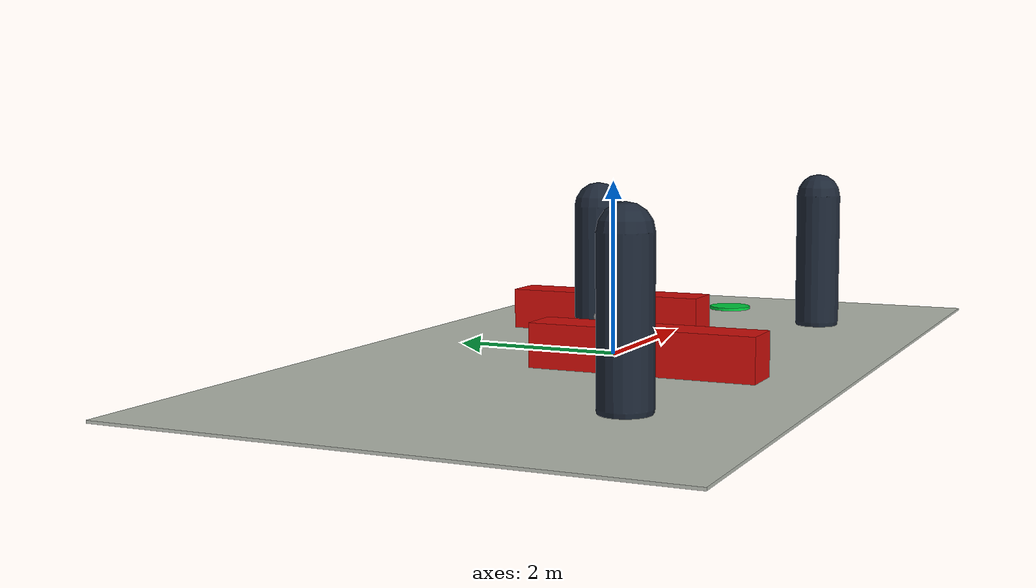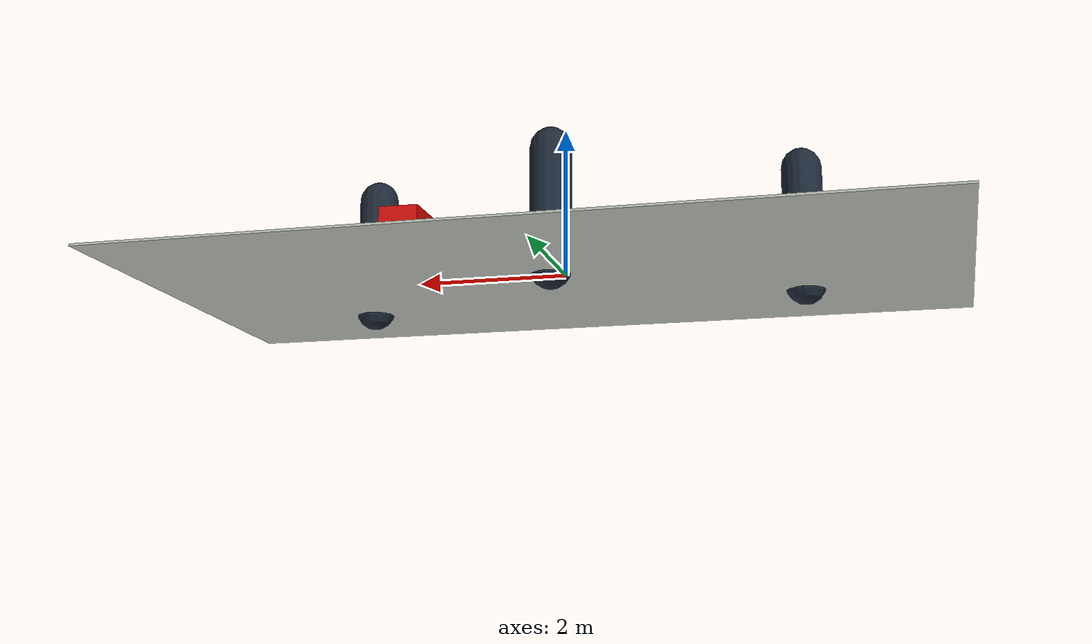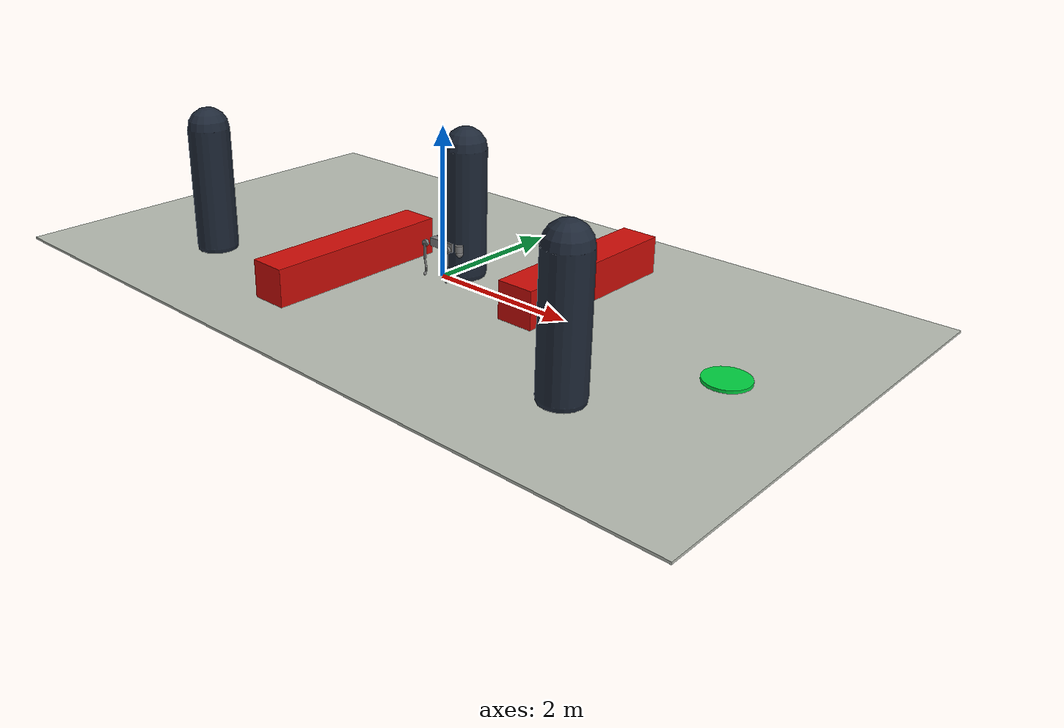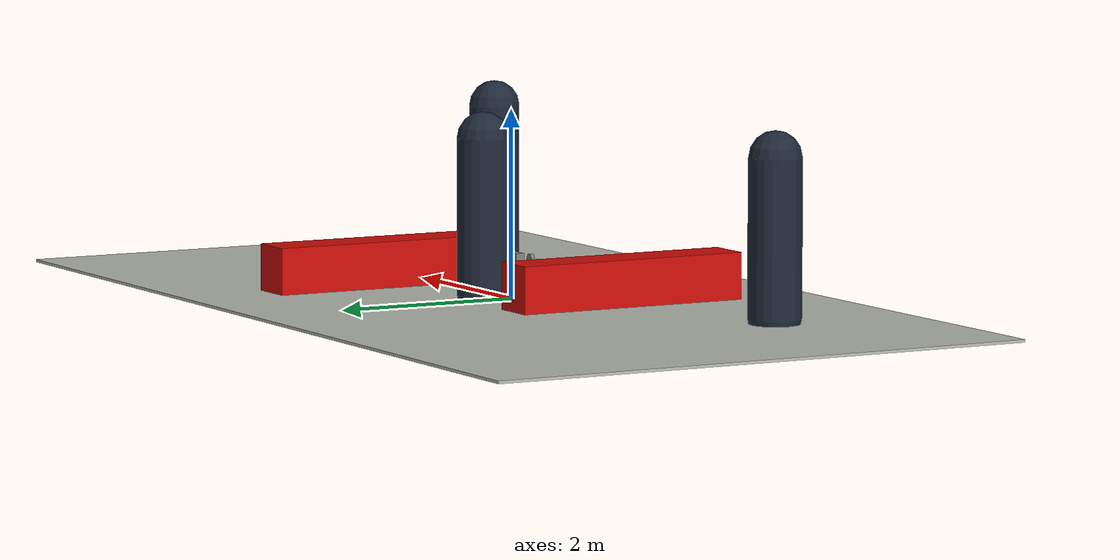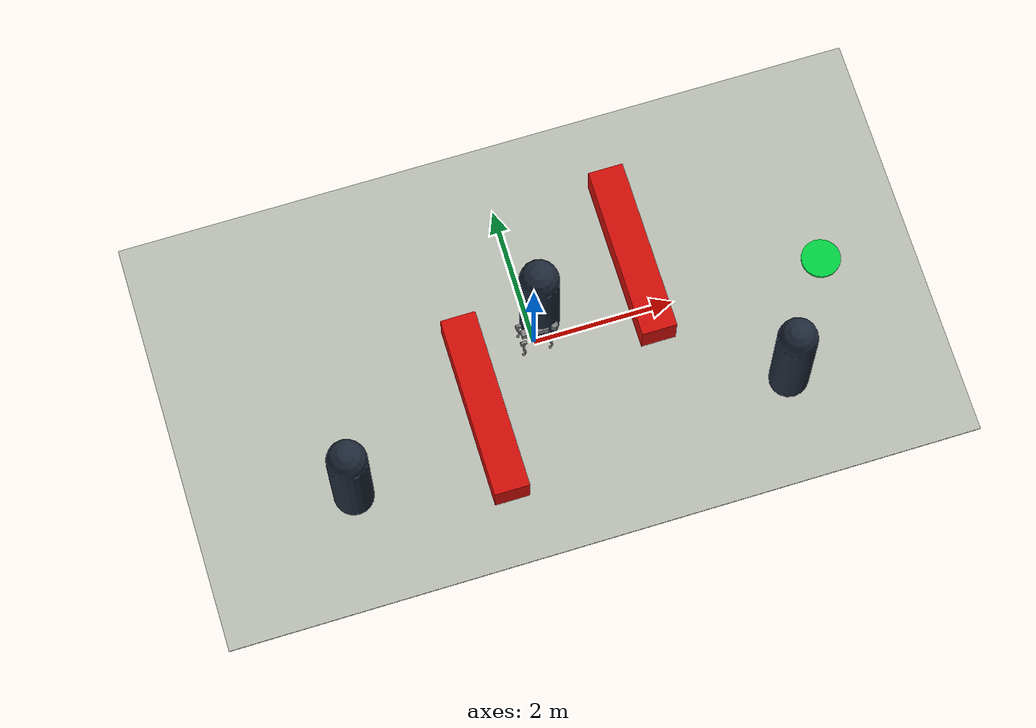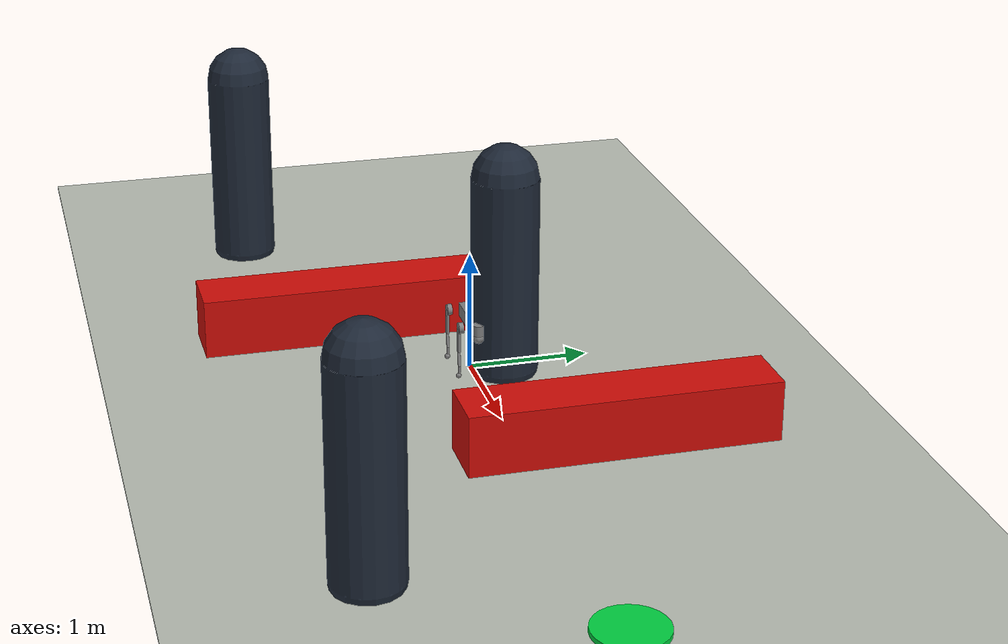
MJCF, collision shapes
<mujoco model="go2_lateral_static_dynamic_obstacles_unity_nav">
  <statistic center="0 0 0.35" extent="6.0"/>
  <visual>
    <headlight diffuse="0.55 0.55 0.55" ambient="0.35 0.35 0.35" specular="0.2 0.2 0.2"/>
    <rgba haze="0.76 0.82 0.9 1"/>
    <global azimuth="120" elevation="-20"/>
  </visual>
    <compiler angle="radian" meshdir="../../Local/MjImports/go2_lateral_static_dynamic_obstacles_imported/Resources" autolimits="true" />

  <option cone="elliptic" impratio="100" />

  <default>
    <default class="go2">
      <geom friction="0.4" margin="0.001" condim="1"/>
      <joint axis="0 1 0" damping="0.1" armature="0.01" frictionloss="0.2"/>
      <motor ctrlrange="-23.7 23.7"/>
      <default class="abduction">
        <joint axis="1 0 0" range="-1.0472 1.0472"/>
      </default>
      <default class="hip">
        <default class="front_hip">
          <joint range="-1.5708 3.4907"/>
        </default>
        <default class="back_hip">
          <joint range="-0.5236 4.5379"/>
        </default>
      </default>
      <default class="knee">
        <joint range="-2.7227 -0.83776"/>
        <motor ctrlrange="-45.43 45.43"/>
      </default>
      <default class="visual">
        <geom type="mesh" contype="0" conaffinity="0" group="2"/>
      </default>
      <default class="collision">
        <geom group="3"/>
        <default class="foot">
          <geom size="0.022" pos="-0.002 0 -0.213" priority="1" condim="6"
            friction="0.4 0.02 0.01"/>
        </default>
      </default>
    </default>
  </default>

  <asset>
    <material name="metal" rgba=".9 .95 .95 1" />
    <material name="black" rgba="0 0 0 1" />
    <material name="white" rgba="1 1 1 1" />
    <material name="gray" rgba="0.671705 0.692426 0.774270 1" />

    <mesh name="base_0" file="base_0.obj" />
    <mesh name="base_1" file="base_1.obj" />
    <mesh name="base_2" file="base_2.obj" />
    <mesh name="base_3" file="base_3.obj" />
    <mesh name="base_4" file="base_4.obj" />
    <mesh name="hip_0" file="hip_0.obj" />
    <mesh name="hip_1" file="hip_1.obj" />
    <mesh name="thigh_0" file="thigh_0.obj" />
    <mesh name="thigh_1" file="thigh_1.obj" />
    <mesh name="thigh_mirror_0" file="thigh_mirror_0.obj" />
    <mesh name="thigh_mirror_1" file="thigh_mirror_1.obj" />
    <mesh name="calf_0" file="calf_0.obj" />
    <mesh name="calf_1" file="calf_1.obj" />
    <mesh name="calf_mirror_0" file="calf_mirror_0.obj" />
    <mesh name="calf_mirror_1" file="calf_mirror_1.obj" />
    <mesh name="foot" file="foot.obj" />
      <material name="floor_mat" rgba="0.72 0.74 0.70 1"/>
    <material name="obstacle_mat" rgba="0.82 0.05 0.03 1"/>
    <material name="goal_mat" rgba="0 0.82 0.25 1"/>
    <material name="npc_mat" rgba="0.12 0.16 0.22 1"/>
    <material name="blue_cylinder_mat" rgba="0.05 0.2 1 1"/>
</asset>

  <worldbody>
    <body name="base_link" pos="0 0 0.445" childclass="go2">
      <inertial pos="0.021112 0 -0.005366" quat="-0.000543471 0.713435 -0.00173769 0.700719"
        mass="6.921"
        diaginertia="0.107027 0.0980771 0.0244531" />
      <freejoint />
      <geom mesh="base_0" material="black" class="visual" />
      <geom mesh="base_1" material="black" class="visual" />
      <geom mesh="base_2" material="black" class="visual" />
      <geom mesh="base_3" material="white" class="visual" />
      <geom mesh="base_4" material="gray" class="visual" />
      <geom size="0.1881 0.04675 0.057" type="box" class="collision" />
      <geom size="0.05 0.045" pos="0.285 0 0.01" type="cylinder" class="collision" />
      <geom size="0.047" pos="0.293 0 -0.06" class="collision" />
      <site name="imu" pos="-0.02557 0 0.04232" />
      <body name="FL_hip" pos="0.1934 0.0465 0">
        <inertial pos="-0.0054 0.00194 -0.000105" quat="0.497014 0.499245 0.505462 0.498237"
          mass="0.678"
          diaginertia="0.00088403 0.000596003 0.000479967" />
        <joint name="FL_hip_joint" class="abduction" />
        <geom mesh="hip_0" material="metal" class="visual" />
        <geom mesh="hip_1" material="gray" class="visual" />
        <geom size="0.046 0.02" pos="0 0.08 0" quat="1 1 0 0" type="cylinder" class="collision" />
        <body name="FL_thigh" pos="0 0.0955 0">
          <inertial pos="-0.00374 -0.0223 -0.0327" quat="0.829533 0.0847635 -0.0200632 0.551623"
            mass="1.152"
            diaginertia="0.00594973 0.00584149 0.000878787" />
          <joint name="FL_thigh_joint" class="front_hip" />
          <geom mesh="thigh_0" material="metal" class="visual" />
          <geom mesh="thigh_1" material="gray" class="visual" />
          <geom size="0.1065 0.01225 0.017" pos="0 0 -0.1065" quat="0.707107 0 0.707107 0"
            type="box" class="collision" />
          <body name="FL_calf" pos="0 0 -0.213">
            <inertial pos="0.00629595 -0.000622121 -0.141417"
              quat="0.710672 0.00154099 -0.00450087 0.703508"
              mass="0.241352" diaginertia="0.0014901 0.00146356 5.31397e-05" />
            <joint name="FL_calf_joint" class="knee" />
            <geom mesh="calf_0" material="gray" class="visual" />
            <geom mesh="calf_1" material="black" class="visual" />
            <geom size="0.012 0.06" pos="0.008 0 -0.06" quat="0.994493 0 -0.104807 0"
              type="cylinder" class="collision" />
            <geom size="0.011 0.0325" pos="0.02 0 -0.148" quat="0.999688 0 0.0249974 0"
              type="cylinder" class="collision" />
            <geom pos="0 0 -0.213" mesh="foot" class="visual" material="black" />
            <geom name="FL" class="foot" />
            <body name="FL_foot" pos="0 0 -0.213" />
          </body>
        </body>
      </body>
      <body name="FR_hip" pos="0.1934 -0.0465 0">
        <inertial pos="-0.0054 -0.00194 -0.000105" quat="0.498237 0.505462 0.499245 0.497014"
          mass="0.678"
          diaginertia="0.00088403 0.000596003 0.000479967" />
        <joint name="FR_hip_joint" class="abduction" />
        <geom mesh="hip_0" material="metal" class="visual" quat="4.63268e-05 1 0 0" />
        <geom mesh="hip_1" material="gray" class="visual" quat="4.63268e-05 1 0 0" />
        <geom size="0.046 0.02" pos="0 -0.08 0" quat="0.707107 0.707107 0 0" type="cylinder"
          class="collision" />
        <body name="FR_thigh" pos="0 -0.0955 0">
          <inertial pos="-0.00374 0.0223 -0.0327" quat="0.551623 -0.0200632 0.0847635 0.829533"
            mass="1.152"
            diaginertia="0.00594973 0.00584149 0.000878787" />
          <joint name="FR_thigh_joint" class="front_hip" />
          <geom mesh="thigh_mirror_0" material="metal" class="visual" />
          <geom mesh="thigh_mirror_1" material="gray" class="visual" />
          <geom size="0.1065 0.01225 0.017" pos="0 0 -0.1065" quat="0.707107 0 0.707107 0"
            type="box" class="collision" />
          <body name="FR_calf" pos="0 0 -0.213">
            <inertial pos="0.00629595 0.000622121 -0.141417"
              quat="0.703508 -0.00450087 0.00154099 0.710672"
              mass="0.241352" diaginertia="0.0014901 0.00146356 5.31397e-05" />
            <joint name="FR_calf_joint" class="knee" />
            <geom mesh="calf_mirror_0" material="gray" class="visual" />
            <geom mesh="calf_mirror_1" material="black" class="visual" />
            <geom size="0.013 0.06" pos="0.01 0 -0.06" quat="0.995004 0 -0.0998334 0"
              type="cylinder" class="collision" />
            <geom size="0.011 0.0325" pos="0.02 0 -0.148" quat="0.999688 0 0.0249974 0"
              type="cylinder" class="collision" />
            <geom pos="0 0 -0.213" mesh="foot" class="visual" material="black" />
            <geom name="FR" class="foot" />
            <body name="FR_foot" pos="0 0 -0.213" />
          </body>
        </body>
      </body>
      <body name="RL_hip" pos="-0.1934 0.0465 0">
        <inertial pos="0.0054 0.00194 -0.000105" quat="0.505462 0.498237 0.497014 0.499245"
          mass="0.678"
          diaginertia="0.00088403 0.000596003 0.000479967" />
        <joint name="RL_hip_joint" class="abduction" />
        <geom mesh="hip_0" material="metal" class="visual" quat="4.63268e-05 0 1 0" />
        <geom mesh="hip_1" material="gray" class="visual" quat="4.63268e-05 0 1 0" />
        <geom size="0.046 0.02" pos="0 0.08 0" quat="0.707107 0.707107 0 0" type="cylinder"
          class="collision" />
        <body name="RL_thigh" pos="0 0.0955 0">
          <inertial pos="-0.00374 -0.0223 -0.0327" quat="0.829533 0.0847635 -0.0200632 0.551623"
            mass="1.152"
            diaginertia="0.00594973 0.00584149 0.000878787" />
          <joint name="RL_thigh_joint" class="back_hip" />
          <geom mesh="thigh_0" material="metal" class="visual" />
          <geom mesh="thigh_1" material="gray" class="visual" />
          <geom size="0.1065 0.01225 0.017" pos="0 0 -0.1065" quat="0.707107 0 0.707107 0"
            type="box" class="collision" />
          <body name="RL_calf" pos="0 0 -0.213">
            <inertial pos="0.00629595 -0.000622121 -0.141417"
              quat="0.710672 0.00154099 -0.00450087 0.703508"
              mass="0.241352" diaginertia="0.0014901 0.00146356 5.31397e-05" />
            <joint name="RL_calf_joint" class="knee" />
            <geom mesh="calf_0" material="gray" class="visual" />
            <geom mesh="calf_1" material="black" class="visual" />
            <geom size="0.013 0.06" pos="0.01 0 -0.06" quat="0.995004 0 -0.0998334 0"
              type="cylinder" class="collision" />
            <geom size="0.011 0.0325" pos="0.02 0 -0.148" quat="0.999688 0 0.0249974 0"
              type="cylinder" class="collision" />
            <geom pos="0 0 -0.213" mesh="foot" class="visual" material="black" />
            <geom name="RL" class="foot" />
            <body name="RL_foot" pos="0 0 -0.213" />
          </body>
        </body>
      </body>
      <body name="RR_hip" pos="-0.1934 -0.0465 0">
        <inertial pos="0.0054 -0.00194 -0.000105" quat="0.499245 0.497014 0.498237 0.505462"
          mass="0.678"
          diaginertia="0.00088403 0.000596003 0.000479967" />
        <joint name="RR_hip_joint" class="abduction" />
        <geom mesh="hip_0" material="metal" class="visual"
          quat="2.14617e-09 4.63268e-05 4.63268e-05 -1" />
        <geom mesh="hip_1" material="gray" class="visual"
          quat="2.14617e-09 4.63268e-05 4.63268e-05 -1" />
        <geom size="0.046 0.02" pos="0 -0.08 0" quat="0.707107 0.707107 0 0" type="cylinder"
          class="collision" />
        <body name="RR_thigh" pos="0 -0.0955 0">
          <inertial pos="-0.00374 0.0223 -0.0327" quat="0.551623 -0.0200632 0.0847635 0.829533"
            mass="1.152"
            diaginertia="0.00594973 0.00584149 0.000878787" />
          <joint name="RR_thigh_joint" class="back_hip" />
          <geom mesh="thigh_mirror_0" material="metal" class="visual" />
          <geom mesh="thigh_mirror_1" material="gray" class="visual" />
          <geom size="0.1065 0.01225 0.017" pos="0 0 -0.1065" quat="0.707107 0 0.707107 0"
            type="box" class="collision" />
          <body name="RR_calf" pos="0 0 -0.213">
            <inertial pos="0.00629595 0.000622121 -0.141417"
              quat="0.703508 -0.00450087 0.00154099 0.710672"
              mass="0.241352" diaginertia="0.0014901 0.00146356 5.31397e-05" />
            <joint name="RR_calf_joint" class="knee" />
            <geom mesh="calf_mirror_0" material="gray" class="visual" />
            <geom mesh="calf_mirror_1" material="black" class="visual" />
            <geom size="0.013 0.06" pos="0.01 0 -0.06" quat="0.995004 0 -0.0998334 0"
              type="cylinder" class="collision" />
            <geom size="0.011 0.0325" pos="0.02 0 -0.148" quat="0.999688 0 0.0249974 0"
              type="cylinder" class="collision" />
            <geom pos="0 0 -0.213" mesh="foot" class="visual" material="black" />
            <geom name="RR" class="foot" />
            <body name="RR_foot" pos="0 0 -0.213" />
          </body>
        </body>
      </body>
    </body>
      <light name="key" pos="0 -4 8" dir="0 0 -1" directional="true" diffuse="0.75 0.75 0.72"/>
    <light name="fill" pos="-4 3 5" dir="0 0 -1" directional="true" diffuse="0.25 0.28 0.32"/>
    <geom name="nav_floor" type="box" pos="0.15 0 -0.015" size="5.35 3 0.015" material="floor_mat"/>
    <geom name="goal" type="cylinder" pos="4.2 0 0.02" size="0.28 0.02" material="goal_mat"/>
    <geom name="static_obstacle_0" type="box" pos="-0.95 -0.8 0.25" size="0.25 1.3 0.25" material="obstacle_mat"/>
    <geom name="static_obstacle_1" type="box" pos="1.65 0.75 0.25" size="0.25 1.25 0.25" material="obstacle_mat"/>
    <body name="person_npc_0" mocap="true" pos="-3 -1.412619 0">
      <geom type="capsule" fromto="0 0 0.05 0 0 1.7" size="0.28" material="npc_mat"/>
    </body>
    <body name="person_npc_1" mocap="true" pos="0.15 0.254479 0">
      <geom type="capsule" fromto="0 0 0.05 0 0 1.7" size="0.28" material="npc_mat"/>
    </body>
    <body name="person_npc_2" mocap="true" pos="3.2 -1.541816 0">
      <geom type="capsule" fromto="0 0 0.05 0 0 1.7" size="0.28" material="npc_mat"/>
    </body>
</worldbody>

  <actuator>
    <motor class="abduction" name="FR_hip" joint="FR_hip_joint" />
    <motor class="hip" name="FR_thigh" joint="FR_thigh_joint" />
    <motor class="knee" name="FR_calf" joint="FR_calf_joint" />
    <motor class="abduction" name="FL_hip" joint="FL_hip_joint" />
    <motor class="hip" name="FL_thigh" joint="FL_thigh_joint" />
    <motor class="knee" name="FL_calf" joint="FL_calf_joint" />
    <motor class="abduction" name="RR_hip" joint="RR_hip_joint" />
    <motor class="hip" name="RR_thigh" joint="RR_thigh_joint" />
    <motor class="knee" name="RR_calf" joint="RR_calf_joint" />
    <motor class="abduction" name="RL_hip" joint="RL_hip_joint" />
    <motor class="hip" name="RL_thigh" joint="RL_thigh_joint" />
    <motor class="knee" name="RL_calf" joint="RL_calf_joint" />
  </actuator>

  <sensor>
    <jointpos name="FR_hip_pos" joint="FR_hip_joint" />
    <jointpos name="FR_thigh_pos" joint="FR_thigh_joint" />
    <jointpos name="FR_calf_pos" joint="FR_calf_joint" />
    <jointpos name="FL_hip_pos" joint="FL_hip_joint" />
    <jointpos name="FL_thigh_pos" joint="FL_thigh_joint" />
    <jointpos name="FL_calf_pos" joint="FL_calf_joint" />
    <jointpos name="RR_hip_pos" joint="RR_hip_joint" />
    <jointpos name="RR_thigh_pos" joint="RR_thigh_joint" />
    <jointpos name="RR_calf_pos" joint="RR_calf_joint" />
    <jointpos name="RL_hip_pos" joint="RL_hip_joint" />
    <jointpos name="RL_thigh_pos" joint="RL_thigh_joint" />
    <jointpos name="RL_calf_pos" joint="RL_calf_joint" />

    <jointvel name="FR_hip_vel" joint="FR_hip_joint" />
    <jointvel name="FR_thigh_vel" joint="FR_thigh_joint" />
    <jointvel name="FR_calf_vel" joint="FR_calf_joint" />
    <jointvel name="FL_hip_vel" joint="FL_hip_joint" />
    <jointvel name="FL_thigh_vel" joint="FL_thigh_joint" />
    <jointvel name="FL_calf_vel" joint="FL_calf_joint" />
    <jointvel name="RR_hip_vel" joint="RR_hip_joint" />
    <jointvel name="RR_thigh_vel" joint="RR_thigh_joint" />
    <jointvel name="RR_calf_vel" joint="RR_calf_joint" />
    <jointvel name="RL_hip_vel" joint="RL_hip_joint" />
    <jointvel name="RL_thigh_vel" joint="RL_thigh_joint" />
    <jointvel name="RL_calf_vel" joint="RL_calf_joint" />

    <jointactuatorfrc name="FR_hip_torque" joint="FR_hip_joint" noise="0.01" />
    <jointactuatorfrc name="FR_thigh_torque" joint="FR_thigh_joint" noise="0.01" />
    <jointactuatorfrc name="FR_calf_torque" joint="FR_calf_joint" noise="0.01" />
    <jointactuatorfrc name="FL_hip_torque" joint="FL_hip_joint" noise="0.01" />
    <jointactuatorfrc name="FL_thigh_torque" joint="FL_thigh_joint" noise="0.01" />
    <jointactuatorfrc name="FL_calf_torque" joint="FL_calf_joint" noise="0.01" />
    <jointactuatorfrc name="RR_hip_torque" joint="RR_hip_joint" noise="0.01" />
    <jointactuatorfrc name="RR_thigh_torque" joint="RR_thigh_joint" noise="0.01" />
    <jointactuatorfrc name="RR_calf_torque" joint="RR_calf_joint" noise="0.01" />
    <jointactuatorfrc name="RL_hip_torque" joint="RL_hip_joint" noise="0.01" />
    <jointactuatorfrc name="RL_thigh_torque" joint="RL_thigh_joint" noise="0.01" />
    <jointactuatorfrc name="RL_calf_torque" joint="RL_calf_joint" noise="0.01" />

    <framequat name="imu_quat" objtype="site" objname="imu" />
    <gyro name="imu_gyro" site="imu" />
    <accelerometer name="imu_acc" site="imu" />

    <framepos name="frame_pos" objtype="site" objname="imu" />
    <framelinvel name="frame_vel" objtype="site" objname="imu" />
  </sensor>

  <keyframe>
    <key name="home" qpos="0 0 0.27 1 0 0 0 0 0.9 -1.8 0 0.9 -1.8 0 0.9 -1.8 0 0.9 -1.8"
      ctrl="0 0.9 -1.8 0 0.9 -1.8 0 0.9 -1.8 0 0.9 -1.8" />
  </keyframe>
</mujoco>
